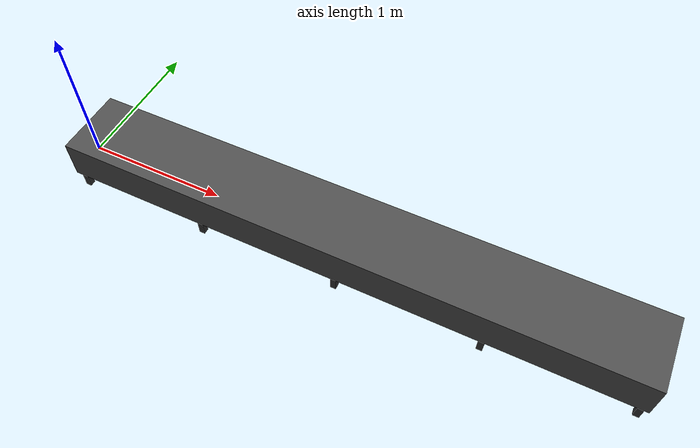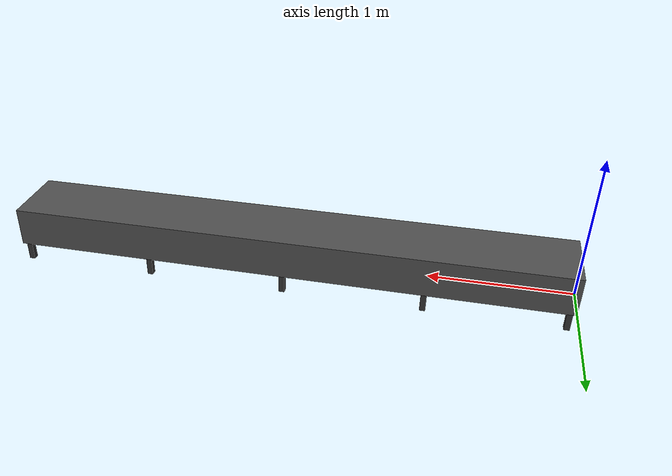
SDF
<?xml version="1.0" ?>
<sdf version="1.8">
<model name="conveyor_frame_4m">
    <static>true</static>
    <pose>2.0 0 0.14 0 0 0</pose>
    <link name="link">
      <inertial><mass>400000</mass>
        <inertia><ixx>4e6</ixx><ixy>0</ixy><ixz>0</ixz>
                 <iyy>4e6</iyy><iyz>0</iyz><izz>4e6</izz></inertia>
      </inertial>

      <!-- Main body (4.0m long) -->
      <collision name="frame_col">
        <geometry><box><size>4.0 0.5 0.28</size></box></geometry>
      </collision>
      <visual name="frame_vis">
        <geometry><box><size>4.0 0.5 0.28</size></box></geometry>
        <material>
          <ambient>0.28 0.28 0.28 1</ambient>
          <diffuse>0.30 0.30 0.30 1</diffuse>
          <specular>0.5 0.5 0.5 1</specular>
        </material>
      </visual>

      <!-- Legs (every 1m approx) -->
      <visual name="leg_1l"><pose>-1.96  0.21 -0.14 0 0 0</pose>
        <geometry><box><size>0.04 0.04 0.28</size></box></geometry>
        <material><ambient>0.2 0.2 0.2 1</ambient><diffuse>0.2 0.2 0.2 1</diffuse></material></visual>
      <visual name="leg_1r"><pose>-1.96 -0.21 -0.14 0 0 0</pose>
        <geometry><box><size>0.04 0.04 0.28</size></box></geometry>
        <material><ambient>0.2 0.2 0.2 1</ambient><diffuse>0.2 0.2 0.2 1</diffuse></material></visual>

      <visual name="leg_2l"><pose>-1.0   0.21 -0.14 0 0 0</pose>
        <geometry><box><size>0.04 0.04 0.28</size></box></geometry>
        <material><ambient>0.2 0.2 0.2 1</ambient><diffuse>0.2 0.2 0.2 1</diffuse></material></visual>
      <visual name="leg_2r"><pose>-1.0  -0.21 -0.14 0 0 0</pose>
        <geometry><box><size>0.04 0.04 0.28</size></box></geometry>
        <material><ambient>0.2 0.2 0.2 1</ambient><diffuse>0.2 0.2 0.2 1</diffuse></material></visual>

      <visual name="leg_3l"><pose> 0.0   0.21 -0.14 0 0 0</pose>
        <geometry><box><size>0.04 0.04 0.28</size></box></geometry>
        <material><ambient>0.2 0.2 0.2 1</ambient><diffuse>0.2 0.2 0.2 1</diffuse></material></visual>
      <visual name="leg_3r"><pose> 0.0  -0.21 -0.14 0 0 0</pose>
        <geometry><box><size>0.04 0.04 0.28</size></box></geometry>
        <material><ambient>0.2 0.2 0.2 1</ambient><diffuse>0.2 0.2 0.2 1</diffuse></material></visual>

      <visual name="leg_4l"><pose> 1.0   0.21 -0.14 0 0 0</pose>
        <geometry><box><size>0.04 0.04 0.28</size></box></geometry>
        <material><ambient>0.2 0.2 0.2 1</ambient><diffuse>0.2 0.2 0.2 1</diffuse></material></visual>
      <visual name="leg_4r"><pose> 1.0  -0.21 -0.14 0 0 0</pose>
        <geometry><box><size>0.04 0.04 0.28</size></box></geometry>
        <material><ambient>0.2 0.2 0.2 1</ambient><diffuse>0.2 0.2 0.2 1</diffuse></material></visual>

      <visual name="leg_5l"><pose> 1.96  0.21 -0.14 0 0 0</pose>
        <geometry><box><size>0.04 0.04 0.28</size></box></geometry>
        <material><ambient>0.2 0.2 0.2 1</ambient><diffuse>0.2 0.2 0.2 1</diffuse></material></visual>
      <visual name="leg_5r"><pose> 1.96 -0.21 -0.14 0 0 0</pose>
        <geometry><box><size>0.04 0.04 0.28</size></box></geometry>
        <material><ambient>0.2 0.2 0.2 1</ambient><diffuse>0.2 0.2 0.2 1</diffuse></material></visual>

      <!-- Cross beams -->
      <visual name="beam_1"><pose>-1.96 0 -0.10 0 0 0</pose>
        <geometry><box><size>0.04 0.46 0.04</size></box></geometry>
        <material><ambient>0.2 0.2 0.2 1</ambient><diffuse>0.2 0.2 0.2 1</diffuse></material></visual>
      <visual name="beam_2"><pose>-1.0 0 -0.10 0 0 0</pose>
        <geometry><box><size>0.04 0.46 0.04</size></box></geometry>
        <material><ambient>0.2 0.2 0.2 1</ambient><diffuse>0.2 0.2 0.2 1</diffuse></material></visual>
      <visual name="beam_3"><pose>0 0 -0.10 0 0 0</pose>
        <geometry><box><size>0.04 0.46 0.04</size></box></geometry>
        <material><ambient>0.2 0.2 0.2 1</ambient><diffuse>0.2 0.2 0.2 1</diffuse></material></visual>
      <visual name="beam_4"><pose>1.0 0 -0.10 0 0 0</pose>
        <geometry><box><size>0.04 0.46 0.04</size></box></geometry>
        <material><ambient>0.2 0.2 0.2 1</ambient><diffuse>0.2 0.2 0.2 1</diffuse></material></visual>
      <visual name="beam_5"><pose>1.96 0 -0.10 0 0 0</pose>
        <geometry><box><size>0.04 0.46 0.04</size></box></geometry>
        <material><ambient>0.2 0.2 0.2 1</ambient><diffuse>0.2 0.2 0.2 1</diffuse></material></visual>
    </link>
  </model>
</sdf>
